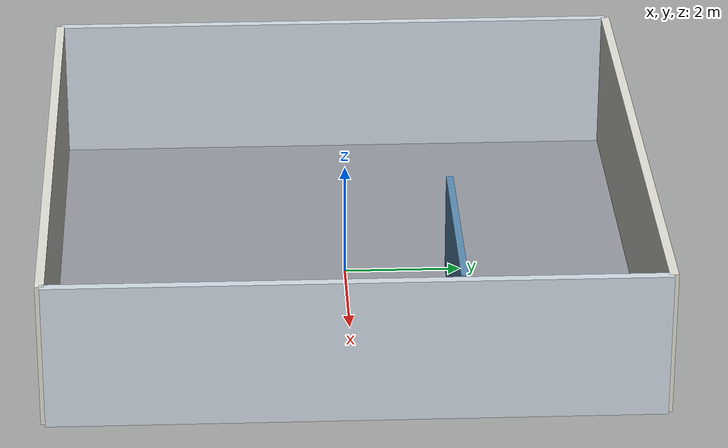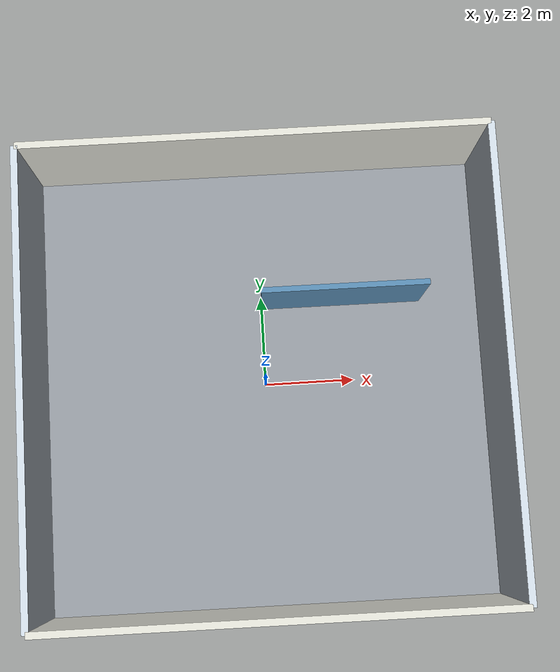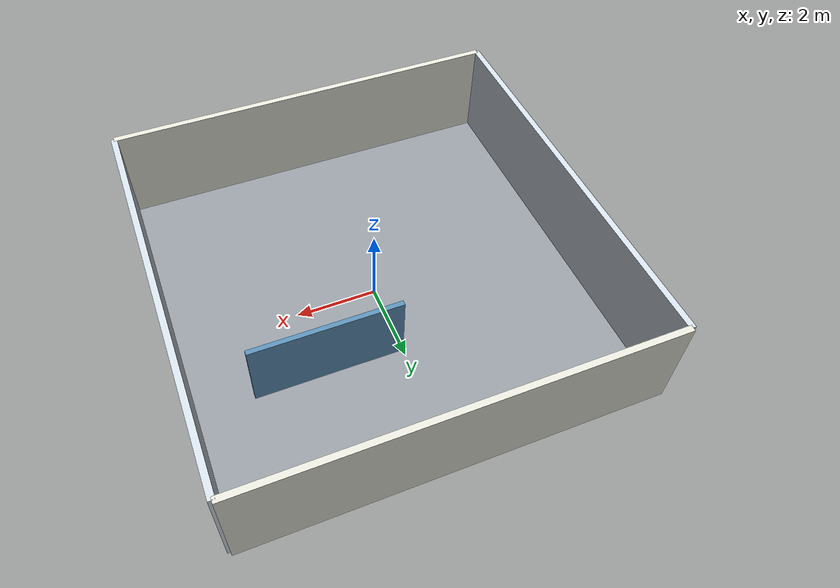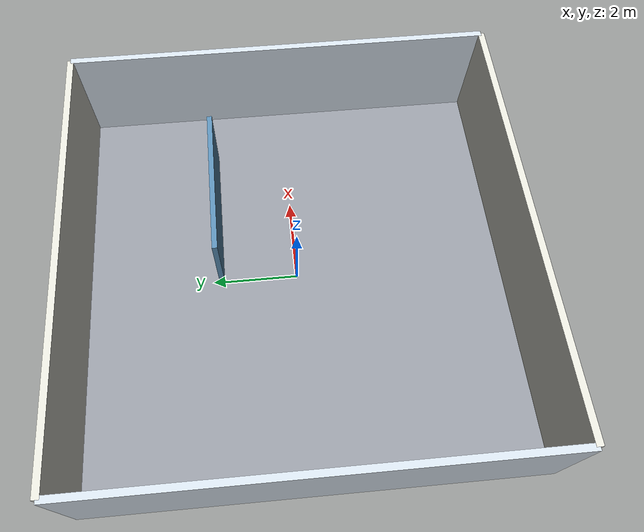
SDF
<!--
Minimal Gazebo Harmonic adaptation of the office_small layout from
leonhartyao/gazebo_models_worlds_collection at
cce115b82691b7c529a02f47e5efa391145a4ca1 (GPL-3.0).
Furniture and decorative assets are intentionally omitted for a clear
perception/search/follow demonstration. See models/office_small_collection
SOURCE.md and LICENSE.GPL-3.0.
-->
<?xml version="1.0"?>
<sdf version="1.9">
  <world name="vision_rgbd">
    <plugin filename="gz-sim-physics-system" name="gz::sim::systems::Physics"/>
    <plugin filename="gz-sim-user-commands-system" name="gz::sim::systems::UserCommands"/>
    <plugin filename="gz-sim-scene-broadcaster-system" name="gz::sim::systems::SceneBroadcaster"/>
    <plugin filename="gz-sim-sensors-system" name="gz::sim::systems::Sensors">
      <render_engine>ogre2</render_engine>
    </plugin>

    <gravity>0 0 -9.8</gravity>
    <physics name="default_physics" default="1" type="ode">
      <max_step_size>0.001</max_step_size>
      <real_time_factor>1.0</real_time_factor>
      <real_time_update_rate>1000</real_time_update_rate>
    </physics>
    <scene>
      <ambient>0.65 0.65 0.65 1</ambient>
      <background>0.78 0.82 0.88 1</background>
      <shadows>true</shadows>
    </scene>
    <light name="sun" type="directional">
      <pose>0 0 10 0 0 0</pose>
      <cast_shadows>true</cast_shadows>
      <diffuse>0.9 0.9 0.9 1</diffuse>
      <specular>0.15 0.15 0.15 1</specular>
      <direction>-0.5 0.4 -1</direction>
    </light>

    <!-- Clear 10 x 10 m office shell derived from office_small. -->
    <model name="office_small_minimal">
      <static>true</static>
      <link name="shell">
        <collision name="floor_collision">
          <pose>0 0 0.01 0 0 0</pose>
          <geometry><box><size>10 10 0.02</size></box></geometry>
          <surface><friction><ode><mu>1.0</mu><mu2>1.0</mu2></ode></friction></surface>
        </collision>
        <visual name="floor_visual">
          <pose>0 0 0.01 0 0 0</pose>
          <geometry><box><size>10 10 0.02</size></box></geometry>
          <material>
            <ambient>0.58 0.60 0.63 1</ambient>
            <diffuse>0.58 0.60 0.63 1</diffuse>
            <specular>0.04 0.04 0.04 1</specular>
          </material>
        </visual>

        <collision name="north_wall_collision">
          <pose>0 5 1.25 0 0 0</pose>
          <geometry><box><size>10 0.15 2.5</size></box></geometry>
        </collision>
        <visual name="north_wall_visual">
          <pose>0 5 1.25 0 0 0</pose>
          <geometry><box><size>10 0.15 2.5</size></box></geometry>
          <material><ambient>0.88 0.88 0.84 1</ambient><diffuse>0.88 0.88 0.84 1</diffuse></material>
        </visual>

        <collision name="south_wall_collision">
          <pose>0 -5 1.25 0 0 0</pose>
          <geometry><box><size>10 0.15 2.5</size></box></geometry>
        </collision>
        <visual name="south_wall_visual">
          <pose>0 -5 1.25 0 0 0</pose>
          <geometry><box><size>10 0.15 2.5</size></box></geometry>
          <material><ambient>0.88 0.88 0.84 1</ambient><diffuse>0.88 0.88 0.84 1</diffuse></material>
        </visual>

        <collision name="east_wall_collision">
          <pose>5 0 1.25 0 0 0</pose>
          <geometry><box><size>0.15 10 2.5</size></box></geometry>
        </collision>
        <visual name="east_wall_visual">
          <pose>5 0 1.25 0 0 0</pose>
          <geometry><box><size>0.15 10 2.5</size></box></geometry>
          <material><ambient>0.82 0.86 0.90 1</ambient><diffuse>0.82 0.86 0.90 1</diffuse></material>
        </visual>

        <collision name="west_wall_collision">
          <pose>-5 0 1.25 0 0 0</pose>
          <geometry><box><size>0.15 10 2.5</size></box></geometry>
        </collision>
        <visual name="west_wall_visual">
          <pose>-5 0 1.25 0 0 0</pose>
          <geometry><box><size>0.15 10 2.5</size></box></geometry>
          <material><ambient>0.82 0.86 0.90 1</ambient><diffuse>0.82 0.86 0.90 1</diffuse></material>
        </visual>

        <!-- One short partition keeps an office character without cluttering
             the robot/actor corridor in the southern half of the room. -->
        <collision name="partition_collision">
          <pose>1.8 1.8 0.9 0 0 0</pose>
          <geometry><box><size>3.6 0.12 1.8</size></box></geometry>
        </collision>
        <visual name="partition_visual">
          <pose>1.8 1.8 0.9 0 0 0</pose>
          <geometry><box><size>3.6 0.12 1.8</size></box></geometry>
          <material><ambient>0.35 0.55 0.70 1</ambient><diffuse>0.35 0.55 0.70 1</diffuse></material>
        </visual>
      </link>
    </model>

    <!-- The launch file spawns either the controlled moving target or the
         frozen stationary regression target from the same pinned skin. -->
  </world>
</sdf>
